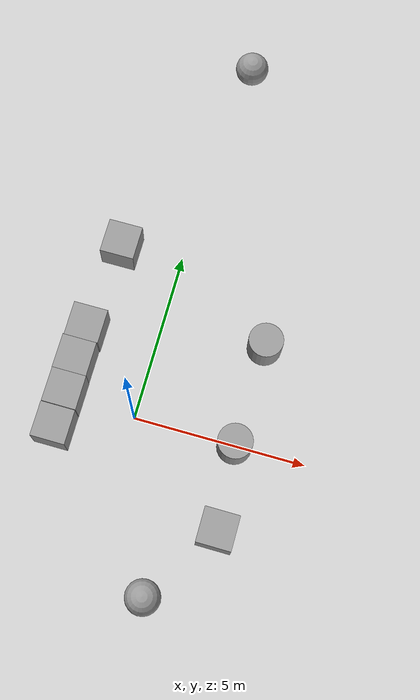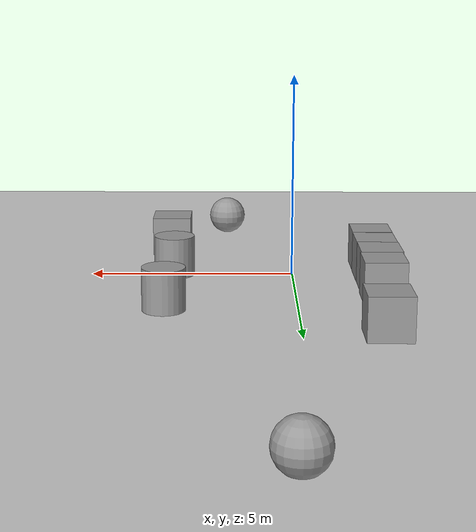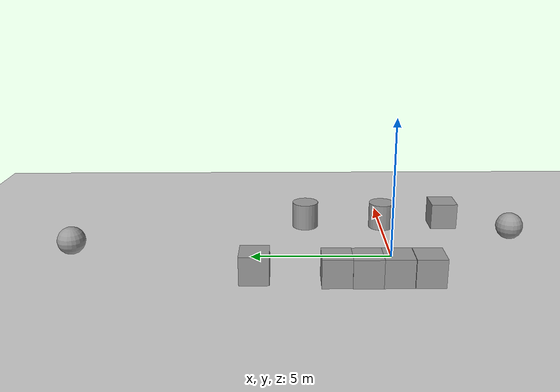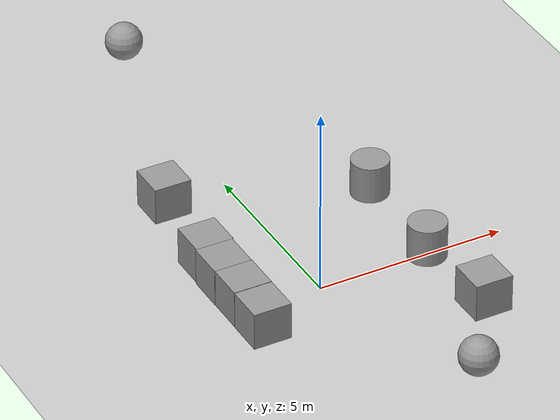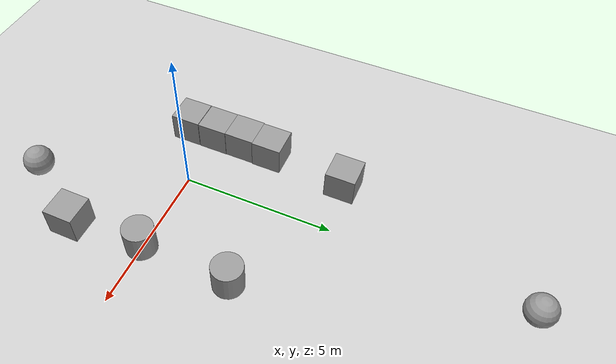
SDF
<sdf version="1.6">
 <world name="default">
  <light name="sun" type="directional">
   <pose>0 0 10 0 -0 0</pose>
   <diffuse>0.8 0.8 0.8 1</diffuse>
   <specular>0.1 0.1 0.1 1</specular>
   <attenuation>
    <range>1000</range>
    <constant>0.9</constant>
    <linear>0.01</linear>
    <quadratic>0.001</quadratic>
   </attenuation>
   <direction>-0.5 0.5 -1</direction>
  </light>
  <model name="ground_plane">
   <static>1</static>
   <link name="link">
    <collision name="collision">
     <geometry><plane><normal>0 0 1</normal><size>100 100</size></plane></geometry>
     <surface><friction><ode><mu>100</mu><mu2>50</mu2></ode></friction></surface>
    </collision>
    <visual name="visual">
     <cast_shadows>0</cast_shadows>
     <geometry><plane><normal>0 0 1</normal><size>100 100</size></plane></geometry>
     <material>
      <script><uri>file://media/materials/scripts/gazebo.material</uri><name>Gazebo/Grey</name></script>
     </material>
    </visual>
   </link>
  </model>
  <gravity>0 0 -9.8</gravity>
  <magnetic_field>6e-06 2.3e-05 -4.2e-05</magnetic_field>
  <atmosphere type="adiabatic"/>
  <physics name="default_physics" default="0" type="ode">
   <max_step_size>0.001</max_step_size>
   <real_time_factor>1</real_time_factor>
   <real_time_update_rate>1000</real_time_update_rate>
  </physics>
  <scene><ambient>0.4 0.4 0.4 1</ambient><background>0.7 0.7 0.7 1</background><shadows>1</shadows></scene>
  <spherical_coordinates>
   <surface_model>EARTH_WGS84</surface_model>
   <latitude_deg>0</latitude_deg>
   <longitude_deg>0</longitude_deg>
   <elevation>0</elevation>
   <heading_deg>0</heading_deg>
  </spherical_coordinates>
  <model name="unit_box_0">
   <pose>-2.04784 -0.909748 0.499995 0 1e-05 0</pose>
   <link name="link">
    <inertial>
     <mass>1</mass>
     <inertia>
      <ixx>0.166667</ixx>
      <ixy>0</ixy>
      <ixz>0</ixz>
      <iyy>0.166667</iyy>
      <iyz>0</iyz>
      <izz>0.166667</izz>
     </inertia>
    </inertial>
    <collision name="collision"><geometry><box><size>1 1 1</size></box></geometry></collision>
    <visual name="visual">
     <geometry><box><size>1 1 1</size></box></geometry>
     <material>
      <script><name>Gazebo/Grey</name><uri>file://media/materials/scripts/gazebo.material</uri></script>
     </material>
    </visual>
   </link>
  </model>
  <model name="unit_box_1">
   <pose>-2.04262 0.104207 0.499995 1e-05 -0 -0.000274</pose>
   <link name="link">
    <inertial>
     <mass>1</mass>
     <inertia>
      <ixx>0.166667</ixx>
      <ixy>0</ixy>
      <ixz>0</ixz>
      <iyy>0.166667</iyy>
      <iyz>0</iyz>
      <izz>0.166667</izz>
     </inertia>
    </inertial>
    <collision name="collision"><geometry><box><size>1 1 1</size></box></geometry></collision>
    <visual name="visual">
     <geometry><box><size>1 1 1</size></box></geometry>
     <material>
      <script><name>Gazebo/Grey</name><uri>file://media/materials/scripts/gazebo.material</uri></script>
     </material>
    </visual>
   </link>
  </model>
  <model name="unit_box_2">
   <pose>-2.04883 1.10427 0.499995 -1e-05 -0 -0.000236</pose>
   <link name="link">
    <inertial>
     <mass>1</mass>
     <inertia>
      <ixx>0.166667</ixx>
      <ixy>0</ixy>
      <ixz>0</ixz>
      <iyy>0.166667</iyy>
      <iyz>0</iyz>
      <izz>0.166667</izz>
     </inertia>
    </inertial>
    <collision name="collision"><geometry><box><size>1 1 1</size></box></geometry></collision>
    <visual name="visual">
     <geometry><box><size>1 1 1</size></box></geometry>
     <material>
      <script><name>Gazebo/Grey</name><uri>file://media/materials/scripts/gazebo.material</uri></script>
     </material>
    </visual>
   </link>
  </model>
  <model name="unit_box_3">
   <pose>-2.0202 2.10428 0.5 0 0 -0.000227</pose>
   <link name="link">
    <inertial>
     <mass>1</mass>
     <inertia>
      <ixx>0.166667</ixx>
      <ixy>0</ixy>
      <ixz>0</ixz>
      <iyy>0.166667</iyy>
      <iyz>0</iyz>
      <izz>0.166667</izz>
     </inertia>
    </inertial>
    <collision name="collision"><geometry><box><size>1 1 1</size></box></geometry></collision>
    <visual name="visual">
     <geometry><box><size>1 1 1</size></box></geometry>
     <material>
      <script><name>Gazebo/Grey</name><uri>file://media/materials/scripts/gazebo.material</uri></script>
     </material>
    </visual>
   </link>
  </model>
  <model name="unit_box_4">
   <pose>-1.78313 4.78614 0.499995 0 1e-05 0</pose>
   <link name="link">
    <inertial>
     <mass>1</mass>
     <inertia>
      <ixx>0.166667</ixx>
      <ixy>0</ixy>
      <ixz>0</ixz>
      <iyy>0.166667</iyy>
      <iyz>0</iyz>
      <izz>0.166667</izz>
     </inertia>
    </inertial>
    <collision name="collision"><geometry><box><size>1 1 1</size></box></geometry></collision>
    <visual name="visual">
     <geometry><box><size>1 1 1</size></box></geometry>
     <material>
      <script><name>Gazebo/Grey</name><uri>file://media/materials/scripts/gazebo.material</uri></script>
     </material>
    </visual>
   </link>
  </model>
  <model name="unit_box_5">
   <pose>3.12036 -2.44354 0.499995 -1e-05 0 0</pose>
   <link name="link">
    <inertial>
     <mass>1</mass>
     <inertia>
      <ixx>0.166667</ixx>
      <ixy>0</ixy>
      <ixz>0</ixz>
      <iyy>0.166667</iyy>
      <iyz>0</iyz>
      <izz>0.166667</izz>
     </inertia>
    </inertial>
    <collision name="collision"><geometry><box><size>1 1 1</size></box></geometry></collision>
    <visual name="visual">
     <geometry><box><size>1 1 1</size></box></geometry>
     <material>
      <script><name>Gazebo/Grey</name><uri>file://media/materials/scripts/gazebo.material</uri></script>
     </material>
    </visual>
   </link>
  </model>
  <model name="unit_cylinder_0">
   <pose>2.94963 -0.019654 0.499992 -3e-06 -4e-06 -0</pose>
   <link name="link">
    <inertial>
     <mass>1</mass>
     <inertia><ixx>0.145833</ixx><ixy>0</ixy><ixz>0</ixz><iyy>0.145833</iyy><iyz>0</iyz><izz>0.125</izz></inertia>
    </inertial>
    <collision name="collision">
     <geometry><cylinder><radius>0.5</radius><length>1</length></cylinder></geometry>
    </collision>
    <visual name="visual">
     <geometry><cylinder><radius>0.5</radius><length>1</length></cylinder></geometry>
     <material>
      <script><name>Gazebo/Grey</name><uri>file://media/materials/scripts/gazebo.material</uri></script>
     </material>
    </visual>
   </link>
  </model>
  <model name="unit_cylinder_1">
   <pose>3.03794 2.99591 0.499993 -3e-06 -3e-06 0</pose>
   <link name="link">
    <inertial>
     <mass>1</mass>
     <inertia><ixx>0.145833</ixx><ixy>0</ixy><ixz>0</ixz><iyy>0.145833</iyy><iyz>0</iyz><izz>0.125</izz></inertia>
    </inertial>
    <collision name="collision">
     <geometry><cylinder><radius>0.5</radius><length>1</length></cylinder></geometry>
    </collision>
    <visual name="visual">
     <geometry><cylinder><radius>0.5</radius><length>1</length></cylinder></geometry>
     <material>
      <script><name>Gazebo/Grey</name><uri>file://media/materials/scripts/gazebo.material</uri></script>
     </material>
    </visual>
   </link>
  </model>
  <model name="unit_sphere_0">
   <pose>0.41152 11.442 0.5 0 -0 0</pose>
   <link name="link">
    <inertial>
     <mass>1</mass>
     <inertia><ixx>0.1</ixx><ixy>0</ixy><ixz>0</ixz><iyy>0.1</iyy><iyz>0</iyz><izz>0.1</izz></inertia>
    </inertial>
    <collision name="collision"><geometry><sphere><radius>0.5</radius></sphere></geometry></collision>
    <visual name="visual">
     <geometry><sphere><radius>0.5</radius></sphere></geometry>
     <material>
      <script><name>Gazebo/Grey</name><uri>file://media/materials/scripts/gazebo.material</uri></script>
     </material>
    </visual>
   </link>
  </model>
  <model name="unit_sphere_1">
   <pose>1.65757 -4.69939 0.5 0 -0 0</pose>
   <link name="link">
    <inertial>
     <mass>1</mass>
     <inertia><ixx>0.1</ixx><ixy>0</ixy><ixz>0</ixz><iyy>0.1</iyy><iyz>0</iyz><izz>0.1</izz></inertia>
    </inertial>
    <collision name="collision"><geometry><sphere><radius>0.5</radius></sphere></geometry></collision>
    <visual name="visual">
     <geometry><sphere><radius>0.5</radius></sphere></geometry>
     <material>
      <script><name>Gazebo/Grey</name><uri>file://media/materials/scripts/gazebo.material</uri></script>
     </material>
    </visual>
   </link>
  </model>
 </world>
</sdf>
